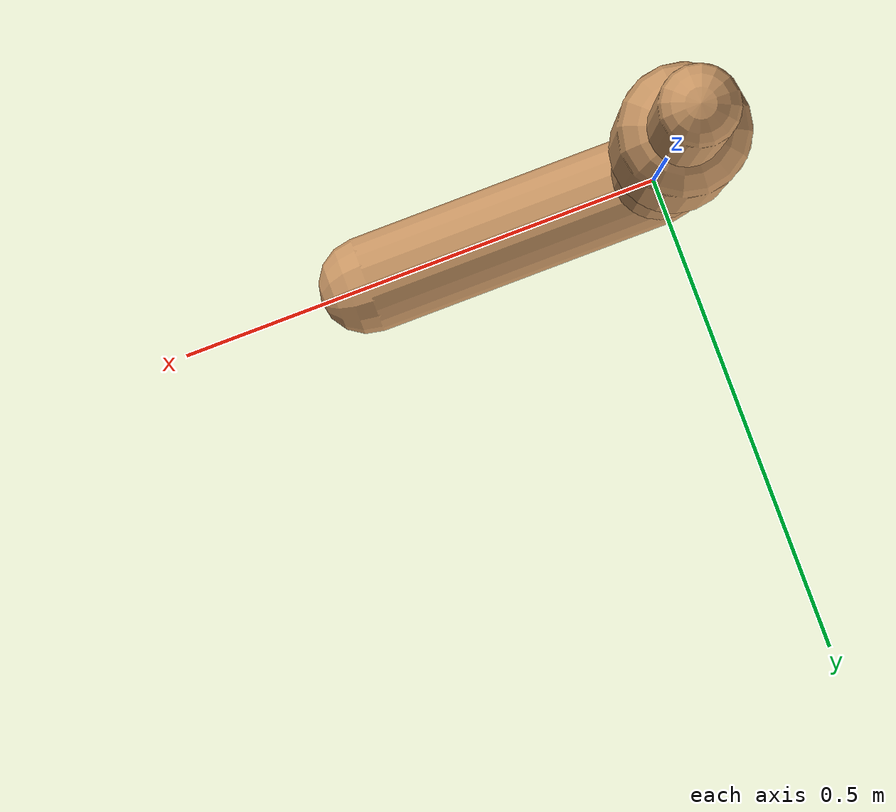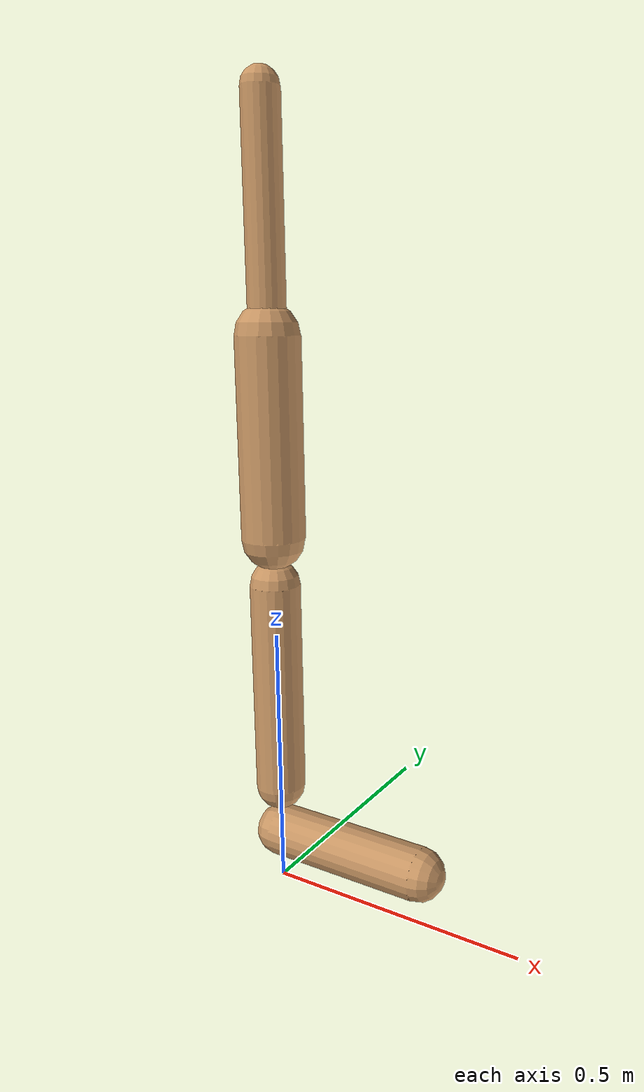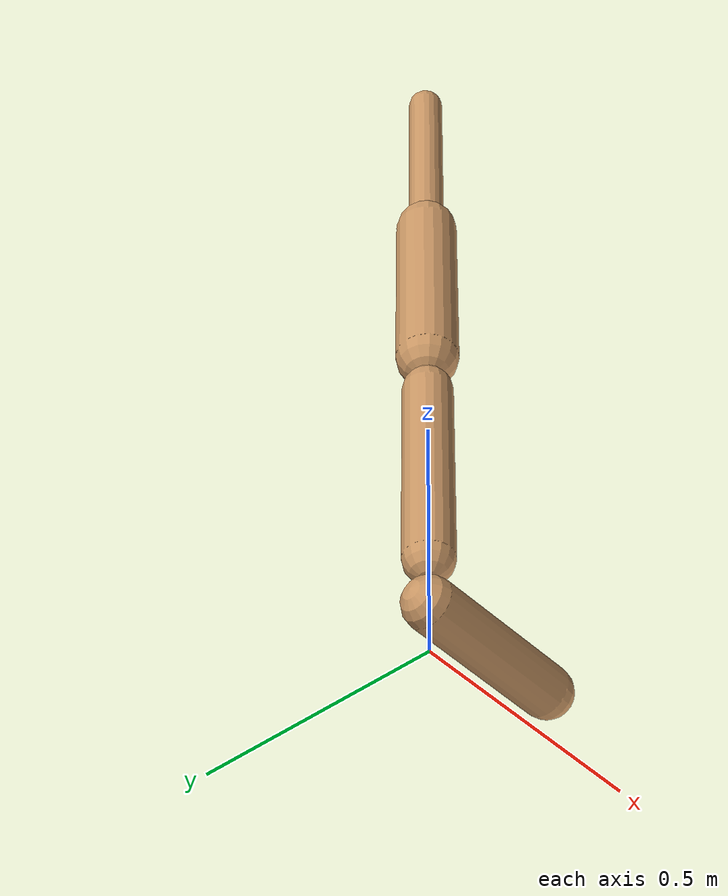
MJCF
<mujoco model="walker2d">
  <compiler angle="degree" coordinate="global" inertiafromgeom="true" />
  <default>
    <joint armature="0.01" damping=".1" limited="true" />
    <geom conaffinity="0" condim="3" contype="1" density="1000" friction="0.8 .1 .1" rgba="0.8 0.6 .4 1" />
  </default>
  <option integrator="RK4" timestep="0.002" />
  <worldbody>

    <body name="torso" pos="0 0 -0.1851717947295">
      <joint armature="0" axis="1 0 0" damping="0" limited="false" name="ignorex" pos="0 0 0" stiffness="0" type="slide" />
      <joint armature="0" axis="0 0 1" damping="0" limited="false" name="ignorez" pos="0 0 0" ref="1.25" stiffness="0" type="slide" />
      <joint armature="0" axis="0 1 0" damping="0" limited="false" name="ignorey" pos="0 0 0" stiffness="0" type="hinge" />
      <geom fromto="0 0 1.45 0 0 1.05" name="torso_geom" size="0.033944041573516076" type="capsule" />
      <body name="thigh">
        <joint axis="0 -1 0" name="thigh_joint" pos="0 0 1.05" range="-150 0" type="hinge" />
        <geom fromto="0.0 0.0 1.05 0.0 0.0 0.6877129553981842" name="thigh_geom" size="0.058262309649166594" type="capsule" />
        <body name="leg" pos="0.0 0.0 0.08771295539818424">
          <joint axis="0 -1 0" name="leg_joint" pos="0 0 0.6" range="-150 0" type="hinge" />
          <geom fromto="0.0 0.0 0.6 0.0 0.0 0.19745883933131578" name="leg_geom" size="0.04660984771933327" type="capsule" />
          <body name="foot" pos="0.0 0.0 0.09745883933131577">
            <joint axis="0 -1 0" name="foot_joint" pos="0 0 0.1" range="-45 45" type="hinge" />
            <geom fromto="-0.0 0.0 0.09999999999999998 0.3048184711564015 0.0 0.09999999999999998" name="foot_geom" size="0.04830778962121486" type="capsule" />
          </body>
        </body>
      </body>

      <body name="thigh_left">
        <joint axis="0 -1 0" name="thigh_left_joint" pos="0 0 1.05" range="-150 0" type="hinge" />
        <geom fromto="0.0 0.0 1.05 0.0 0.0 0.6877129553981842" name="thigh_left_geom" rgba=".7 .3 .6 1" size="0.058262309649166594" type="capsule" />
        <body name="leg_left" pos="0.0 0.0 0.08771295539818424">
          <joint axis="0 -1 0" name="leg_left_joint" pos="0 0 0.6" range="-150 0" type="hinge" />
          <geom fromto="0.0 0.0 0.6 0.0 0.0 0.19745883933131578" name="leg_left_geom" rgba=".7 .3 .6 1" size="0.04660984771933327" type="capsule" />
          <body name="foot_left" pos="0.0 0.0 0.09745883933131577">
            <joint axis="0 -1 0" name="foot_left_joint" pos="0 0 0.1" range="-45 45" type="hinge" />
            <geom fromto="-0.0 0.0 0.09999999999999998 0.3048184711564015 0.0 0.09999999999999998" name="foot_left_geom" rgba=".7 .3 .6 1" size="0.04830778962121486" type="capsule" />
          </body>
        </body>
      </body>
    </body>
  </worldbody>
  <actuator>

    <motor ctrllimited="true" ctrlrange="-1.0 1.0" gear="100" joint="thigh_joint" />
    <motor ctrllimited="true" ctrlrange="-1.0 1.0" gear="100" joint="leg_joint" />
    <motor ctrllimited="true" ctrlrange="-1.0 1.0" gear="100" joint="foot_joint" />
    <motor ctrllimited="true" ctrlrange="-1.0 1.0" gear="100" joint="thigh_left_joint" />
    <motor ctrllimited="true" ctrlrange="-1.0 1.0" gear="100" joint="leg_left_joint" />
    <motor ctrllimited="true" ctrlrange="-1.0 1.0" gear="100" joint="foot_left_joint" />

  </actuator>
</mujoco>
